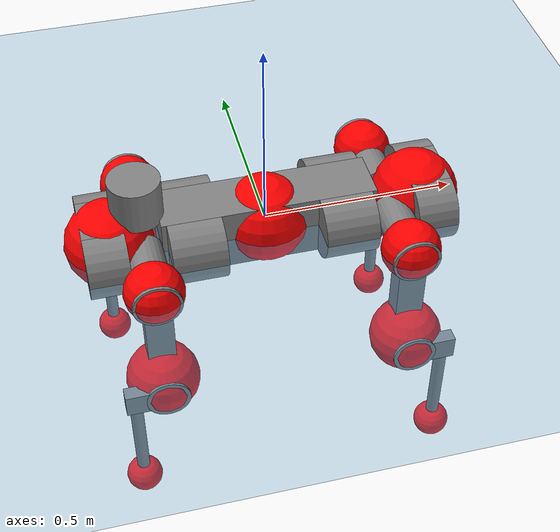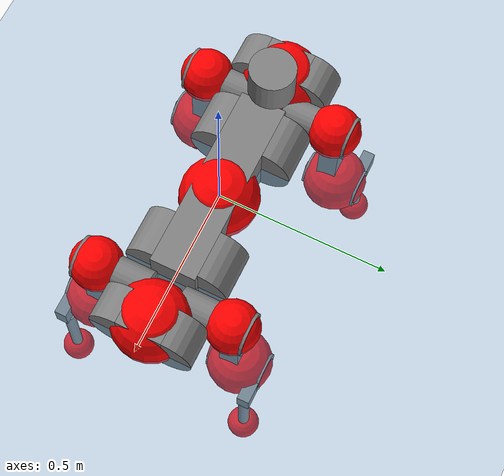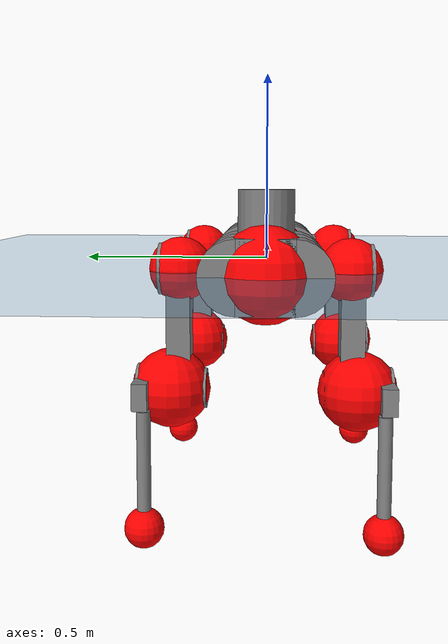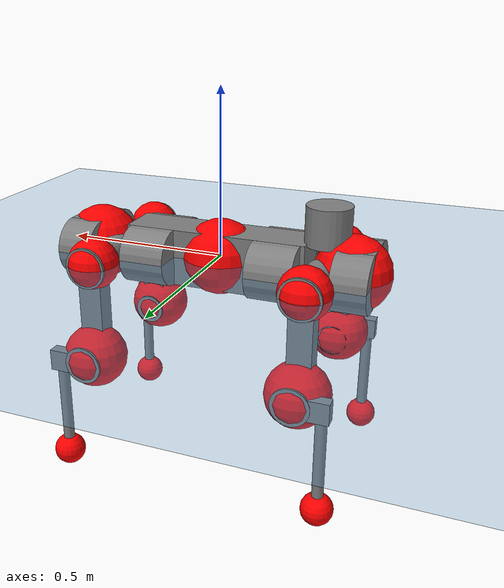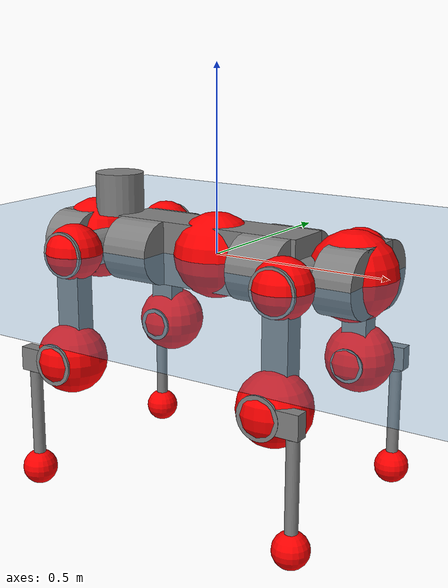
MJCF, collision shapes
<mujoco model="anymal_c">
  <compiler angle="radian" assetdir="assets" balanceinertia="true" inertiafromgeom="false"/>

  <option timestep="0.005" density="1.2" viscosity="2e-05"/>

  <size nkey="1"/>

  <visual>
    <quality shadowsize="8192"/>
    <map shadowclip="0.5"/>
  </visual>

  <default>
    <default class="/">
      <material specular="0" shininess="0.25"/>
      <geom contype="0" conaffinity="0" group="1" solref="-1000 -80"/>
      <site size="0.01 0.005 0.005" group="5"/>
      <general forcelimited="true" forcerange="-80 80" biastype="affine" gainprm="80" biasprm="0 -80 -2"/>
      <default class="anymal_c">
        <joint armature="0.01" damping="0.01" frictionloss="0.1"/>
        <default class="visual">
          <geom type="mesh" group="2"/>
          <default class="visual_zflip"/>
        </default>
        <default class="collision">
          <geom type="cylinder" group="3"/>
          <default class="foot">
            <geom size="0.03 0 0" type="sphere" condim="6" priority="1" friction="0.8 0.02 0.01" solimp="0.015 1 0.03"/>
          </default>
        </default>
      </default>
      <default class="reward_collision_sphere">
        <geom group="5" rgba="1 0 0 1"/>
      </default>
    </default>
  </default>

  <asset>
    <texture type="skybox" colorspace="auto" name="//unnamed_texture_0" builtin="gradient" rgb1="0.95 0.95 0.95" rgb2="0.95 0.95 0.95" width="100" height="600"/>
    <texture type="2d" colorspace="auto" name="texplane" builtin="checker" rgb1="0.345 0.575 0.748" rgb2="0.345 0.575 0.748" markrgb="1 1 1" width="512" height="512"/>
    <texture type="2d" colorspace="linear" name="base" file="base.png"/>
    <texture type="2d" colorspace="linear" name="top_shell" file="top_shell.png"/>
    <texture type="2d" colorspace="linear" name="bottom_shell" file="bottom_shell.png"/>
    <texture type="2d" colorspace="linear" name="remote" file="remote.png"/>
    <texture type="2d" colorspace="linear" name="hatch" file="hatch.png"/>
    <texture type="2d" colorspace="linear" name="handle" file="handle.png"/>
    <texture type="2d" colorspace="linear" name="face" file="face.png"/>
    <texture type="2d" colorspace="linear" name="battery" file="battery.png"/>
    <texture type="2d" colorspace="linear" name="lidar_cage" file="lidar_cage.png"/>
    <texture type="2d" colorspace="linear" name="depth_camera" file="depth_camera.png"/>
    <texture type="2d" colorspace="linear" name="wide_angle_camera" file="wide_angle_camera.png"/>
    <texture type="2d" colorspace="linear" name="lidar" file="lidar.png"/>
    <texture type="2d" colorspace="linear" name="drive" file="drive.png"/>
    <texture type="2d" colorspace="linear" name="hip_l" file="hip_l.png"/>
    <texture type="2d" colorspace="linear" name="shank_l" file="shank_l.png"/>
    <texture type="2d" colorspace="linear" name="foot" file="foot.png"/>
    <texture type="2d" colorspace="linear" name="thigh" file="thigh.png"/>
    <texture type="2d" colorspace="linear" name="shank_r" file="shank_r.png"/>
    <texture type="2d" colorspace="linear" name="hip_r" file="hip_r.png"/>
    <material name="MatPlane" class="/" texture="texplane" texuniform="true" texrepeat="2 2" specular="0.9" shininess="0.5"/>
    <material name="black_plastic" class="/" rgba="0.007 0.007 0.007 1"/>
    <material name="green" class="/" rgba="0.052 0.178 0.033 1"/>
    <material name="red" class="/" rgba="0.178 0.006 0.005 1"/>
    <material name="yellow" class="/" rgba="0.178 0.119 0.006 1"/>
    <material name="lwl" class="/" rgba="0.8 0.8 0.8 1"/>
    <material name="base" class="/" texture="base"/>
    <material name="top_shell" class="/" texture="top_shell"/>
    <material name="bottom_shell" class="/" texture="bottom_shell"/>
    <material name="hip_l" class="/" texture="hip_l"/>
    <material name="thigh" class="/" texture="thigh"/>
    <material name="shank_l" class="/" texture="shank_l"/>
    <material name="foot" class="/" texture="foot"/>
    <material name="hip_r" class="/" texture="hip_r"/>
    <material name="shank" class="/" texture="shank_r"/>
    <material name="hatch" class="/" texture="hatch"/>
    <material name="remote" class="/" texture="remote"/>
    <material name="handle" class="/" texture="handle"/>
    <material name="face" class="/" texture="face"/>
    <material name="depth_camera" class="/" texture="depth_camera"/>
    <material name="wide_angle_camera" class="/" texture="wide_angle_camera"/>
    <material name="battery" class="/" texture="battery"/>
    <material name="lidar_cage" class="/" texture="lidar_cage"/>
    <material name="lidar" class="/" texture="lidar"/>
    <material name="drive" class="/" texture="drive"/>
    <mesh name="base_0" class="/" file="base_0.obj"/>
    <mesh name="base_1" class="/" file="base_1.obj"/>
    <mesh name="base_2" class="/" file="base_2.obj"/>
    <mesh name="base_3" class="/" file="base_3.obj"/>
    <mesh name="base_4" class="/" file="base_4.obj"/>
    <mesh name="base_5" class="/" file="base_5.obj"/>
    <mesh name="top_shell" class="/" file="top_shell.obj"/>
    <mesh name="bottom_shell" class="/" file="bottom_shell.obj"/>
    <mesh name="remote" class="/" file="remote.obj"/>
    <mesh name="handle" class="/" file="handle.obj"/>
    <mesh name="face" class="/" file="face.obj"/>
    <mesh name="wide_angle_camera" class="/" file="wide_angle_camera.obj"/>
    <mesh name="depth_camera" class="/" file="depth_camera.obj"/>
    <mesh name="battery" class="/" file="battery.obj"/>
    <mesh name="lidar_cage" class="/" file="lidar_cage.obj"/>
    <mesh name="lidar" class="/" file="lidar.obj"/>
    <mesh name="drive" class="/" file="drive.obj"/>
    <mesh name="hip_l" class="/" file="hip_l.obj"/>
    <mesh name="thigh" class="/" file="thigh.obj"/>
    <mesh name="shank_l" class="/" file="shank_l.obj"/>
    <mesh name="foot" class="/" file="foot.obj"/>
    <mesh name="hip_r" class="/" file="hip_r.obj"/>
    <mesh name="hatch" class="/" file="hatch.obj"/>
    <mesh name="shank_r" class="/" file="shank_r.obj"/>
  </asset>

  <worldbody>
    <geom name="floor" class="/" size="100 100 0.125" type="plane" group="0" material="MatPlane"/>
    <light name="toplight_shadow" class="/" pos="0 0 5" dir="0.0990148 0.0990148 -0.990148" type="directional" ambient="0.04 0.04 0.04" diffuse="0.55 0.55 0.55" specular="0.12 0.12 0.12"/>
    <light name="toplight_fill" class="/" pos="0 0 5" dir="0.0990148 0.0990148 -0.990148" type="directional" castshadow="false" ambient="0.04 0.04 0.04" diffuse="0.3 0.3 0.3" specular="0.08 0.08 0.08"/>
    <body name="trunk" childclass="anymal_c" pos="5.48699e-05 8.28107e-05 -0.00259432" quat="1 0.000100072 4.72901e-05 0.000148614">
      <inertial pos="0.00188745 0.00255811 0.0527003" quat="0.499501 0.500483 0.499797 0.500219" mass="16.2198" diaginertia="0.375838 0.48026 0.235051"/>
      <joint name="//unnamed_joint_0" type="free" armature="0" damping="0" frictionloss="0"/>
      <geom name="//unnamed_geom_1" class="visual" material="green" mesh="base_0"/>
      <geom name="//unnamed_geom_2" class="visual" material="yellow" mesh="base_1"/>
      <geom name="//unnamed_geom_3" class="visual" material="red" mesh="base_2"/>
      <geom name="//unnamed_geom_4" class="visual" material="black_plastic" mesh="base_3"/>
      <geom name="//unnamed_geom_5" class="visual" material="lwl" mesh="base_4"/>
      <geom name="//unnamed_geom_6" class="visual" material="base" mesh="base_5"/>
      <geom name="trunk_1" class="collision" size="0.277705 0.0670322 0.0861843" type="box"/>
      <geom name="trunk_2" class="collision" size="0.0861843 0.0694262" pos="0.195113 0.0668347 0" quat="0.707107 0 0.707107 0"/>
      <geom name="trunk_3" class="collision" size="0.0861843 0.0694262" pos="-0.195113 0.0668347 0" quat="0.707107 0 0.707107 0"/>
      <geom name="trunk_4" class="collision" size="0.0861843 0.0694262" pos="0.195113 -0.0668347 0" quat="0.707107 0 0.707107 0"/>
      <geom name="trunk_5" class="collision" size="0.0861843 0.0694262" pos="-0.195113 -0.0668347 0" quat="0.707107 0 0.707107 0"/>
      <geom name="//unnamed_geom_12" class="visual" material="top_shell" mesh="top_shell"/>
      <geom name="//unnamed_geom_13" class="visual" material="bottom_shell" mesh="bottom_shell"/>
      <geom name="//unnamed_geom_14" class="visual" material="remote" mesh="remote"/>
      <geom name="//unnamed_geom_15" class="visual" material="handle" mesh="handle"/>
      <geom name="//unnamed_geom_16" class="visual" pos="0.371835 0 0" quat="1 0 0 0" material="face" mesh="face"/>
      <geom name="trunk_6" class="collision" size="0.0526682 0.0670322 0.0861843" pos="0.421174 0 0" type="box"/>
      <geom name="//unnamed_geom_18" class="collision" size="0.0861843 0.0526682" pos="0.421174 0.0668347 0" quat="0.707107 0 0.707107 0"/>
      <geom name="//unnamed_geom_19" class="collision" size="0.0861843 0.0526682" pos="0.421174 -0.0668347 0" quat="0.707107 0 0.707107 0"/>
      <geom name="//unnamed_geom_20" class="visual" pos="0.414137 0 -0.0307535" quat="0.965926 0 0.258819 0" material="depth_camera" mesh="depth_camera"/>
      <geom name="//unnamed_geom_21" class="visual" pos="0.460196 0 0.0152837" material="wide_angle_camera" mesh="wide_angle_camera"/>
      <geom name="//unnamed_geom_22" class="visual_zflip" pos="-0.371835 0 0" quat="0 0 0 1" material="face" mesh="face"/>
      <geom name="trunk_7" class="collision" size="0.0526682 0.0670322 0.0861843" pos="-0.421174 0 0" quat="0 0 0 1" type="box"/>
      <geom name="//unnamed_geom_24" class="collision" size="0.0861843 0.0526682" pos="-0.421174 -0.0668347 0" quat="0 -0.707107 0 0.707107"/>
      <geom name="//unnamed_geom_25" class="collision" size="0.0861843 0.0526682" pos="-0.421174 0.0668347 0" quat="0 -0.707107 0 0.707107"/>
      <geom name="//unnamed_geom_26" class="visual" pos="-0.414137 0 -0.0307535" quat="0 -0.258819 0 0.965926" material="depth_camera" mesh="depth_camera"/>
      <geom name="//unnamed_geom_27" class="visual_zflip" pos="-0.460196 0 0.0152837" quat="0 0 0 1" material="wide_angle_camera" mesh="wide_angle_camera"/>
      <geom name="//unnamed_geom_28" class="visual" material="battery" mesh="battery"/>
      <geom name="//unnamed_geom_29" class="visual" pos="0 0.0737651 0.0287173" quat="0.683013 -0.183013 0.183013 0.683013" material="depth_camera" mesh="depth_camera"/>
      <geom name="//unnamed_geom_30" class="visual" pos="0 -0.0737651 0.0287173" quat="0.683013 0.183013 0.183013 -0.683013" material="depth_camera" mesh="depth_camera"/>
      <geom name="//unnamed_geom_31" class="visual" pos="-0.326533 0 0.0750404" quat="1 0 0 0" material="lidar_cage" mesh="lidar_cage"/>
      <geom name="trunk_8" class="collision" size="0.0670322 0.0574562" pos="-0.326533 0 0.136298"/>
      <geom name="//unnamed_geom_33" class="visual" pos="-0.326533 2.26738e-05 0.14518" quat="0.707107 0 0 -0.707107" material="lidar" mesh="lidar"/>
      <geom name="//unnamed_geom_34" class="visual" pos="0.269031 0.0993208 -1.14153e-09" quat="0.258819 0.965926 0 0" material="drive" mesh="drive"/>
      <geom name="//unnamed_geom_35" class="visual" pos="0.269031 -0.0993208 1.14153e-09" quat="0.258819 -0.965926 0 0" material="drive" mesh="drive"/>
      <geom name="//unnamed_geom_36" class="visual" pos="-0.269031 0.0993208 1.14153e-09" quat="0 0 0.965926 -0.258819" material="drive" mesh="drive"/>
      <geom name="//unnamed_geom_37" class="visual" pos="-0.269031 -0.0993208 -1.14153e-09" quat="0 0 -0.965926 -0.258819" material="drive" mesh="drive"/>
      <geom name="//unnamed_geom_38" class="visual" pos="0.10406 0 0.0745299" quat="1 0 0 0" material="hatch" mesh="hatch"/>
      <geom name="//unnamed_geom_39" class="reward_collision_sphere" size="0.114912"/>
      <geom name="//unnamed_geom_40" class="reward_collision_sphere" size="0.114912" pos="0.403681 0 0"/>
      <geom name="//unnamed_geom_41" class="reward_collision_sphere" size="0.114912" pos="-0.403681 0 0"/>
      <site name="imu" pos="0.224216 -0.00113923 0.0495756" size="0.00957603"/>
      <camera name="track" pos="0 -1.90956 0" quat="0.707107 0.707107 0 0" mode="trackcom"/>
      <camera name="ego_camera" pos="0.403681 0 -0.0408383" quat="-0.5 -0.5 0.5 0.5"/>
      <body name="LF_HIP" pos="0.269 0.0980306 -0.00149398" quat="0.258875 0.965911 8.82254e-05 -0.000200475">
        <inertial pos="0.0480978 -0.0147823 -0.00993761" quat="-0.124729 0.710052 -0.131257 0.680471" mass="2.46711" diaginertia="0.00340791 0.00383291 0.0037526"/>
        <joint name="LF_HAA" pos="0 0 0" axis="0.999996 0.000857487 -0.00281137" range="-0.737839 0.484432" armature="0.0106685" damping="0.0190591" frictionloss="0.0823157"/>
        <geom name="//unnamed_geom_42" class="visual" pos="0 -6.71512e-05 1.10295e-05" quat="0.258819 -0.965926 0 0" material="hip_l" mesh="hip_l"/>
        <geom name="//unnamed_geom_43" class="visual" pos="0.0537344 -0.0658941 -0.0385334" quat="0.183013 -0.683013 0.683013 0.183013" material="drive" mesh="drive"/>
        <geom name="//unnamed_geom_44" class="collision" size="0.0478801 0.0670322" pos="0.0537344 -0.011419 -0.00704971" quat="-0.353553 -0.612372 0.612372 -0.353553"/>
        <body name="LF_THIGH" pos="0.0539781 -0.0692357 -0.0417817" quat="0.182744 -0.682959 0.683133 0.183033">
          <inertial pos="0.0274185 -8.96284e-05 -0.252536" quat="0.993109 -0.00484471 -0.0806213 0.084923" mass="2.5814" diaginertia="0.0175213 0.0236898 0.00434886"/>
          <joint name="LF_HFE" pos="0 0 0" axis="0.999989 -0.00451201 -0.0015431" range="-3.19253 3.15774" armature="0.00937282" damping="0.00992566" frictionloss="0.0921182"/>
          <geom name="//unnamed_geom_45" class="visual" pos="-0.00114826 -1.80939e-06 0" quat="0.707107 0 0 -0.707107" material="thigh" mesh="thigh"/>
          <geom name="//unnamed_geom_46" class="collision" size="0.0622442 0.0383041" pos="0.0358828 0 0" quat="0.5 0.5 -0.5 -0.5"/>
          <geom name="//unnamed_geom_47" class="collision" size="0.0359101 0.0287281 0.135323" pos="0.0269121 0 -0.144276" quat="0.707107 0 0 -0.707107" type="box"/>
          <geom name="//unnamed_geom_48" class="visual" pos="0.089976 0 -0.290973" quat="1 0 0 0" material="drive" mesh="drive"/>
          <geom name="//unnamed_geom_49" class="collision" size="0.0478801 0.0670322" pos="0.0271812 0 -0.290973" quat="0.707107 0 0.707107 0"/>
          <geom name="//unnamed_geom_50" class="reward_collision_sphere" size="0.0766082" pos="0.0224267 0 0"/>
          <body name="LF_SHANK" pos="0.0896948 0.00202073 -0.288758" quat="0.999999 0.000300798 -0.0012739 -0.000413851">
            <inertial pos="0.00519042 -0.0584909 -0.0820969" quat="0.992912 -0.116092 -0.000617269 -0.0254668" mass="0.496975" diaginertia="0.00590064 0.00719518 0.00119466"/>
            <joint name="LF_KFE" pos="0 0 0" axis="0.999985 -0.000559727 0.00541014" range="-3.15992 3.16026" armature="0.00920276" damping="0.0237489" frictionloss="0.0832802"/>
            <geom name="//unnamed_geom_51" class="visual" pos="-0.000374422 -0.00199644 0" quat="0.707107 0 0 -0.707107" material="shank_l" mesh="shank_l"/>
            <geom name="LF_kfe_act" class="collision" size="0.0574562 0.0191521" pos="0.0179414 0 0" quat="0.5 0.5 -0.5 -0.5"/>
            <geom name="//unnamed_geom_53" class="collision" size="0.0550612 0.0323191 0.0181945" pos="0.0179414 -0.054899 0" quat="0.5 0.5 -0.5 -0.5" type="box"/>
            <geom name="//unnamed_geom_54" class="visual" pos="0.0117068 -0.0846165 -0.345053" quat="0.382683 0 0 -0.92388" material="foot" mesh="foot"/>
            <geom name="LF_calf" class="collision" size="0.0167581 0.135263" pos="0.0117068 -0.0839731 -0.172526" quat="0.707107 0 0 -0.707107"/>
            <geom name="LF_foot" class="foot" size="0.0313353" pos="0.0117068 -0.0839731 -0.322081" quat="0.707107 0 0 -0.707107"/>
            <geom name="//unnamed_geom_57" class="reward_collision_sphere" size="0.0957603" pos="-0.0448535 0 0"/>
            <geom name="//unnamed_geom_58" class="reward_collision_sphere" size="0.0478801" pos="0.0117068 -0.0839731 -0.322081"/>
            <site name="LF_foot" class="foot" pos="0.0117068 -0.0839731 -0.322081" quat="0.707107 0 0 -0.707107" size="0.00957603"/>
          </body>
        </body>
      </body>
      <body name="RF_HIP" pos="0.269996 -0.102053 0.000274769" quat="0.257528 -0.966271 -0.000476142 4.08242e-05">
        <inertial pos="0.050874 0.0139 -0.00745269" quat="0.134509 0.679417 0.127687 0.709926" mass="2.35191" diaginertia="0.00330141 0.00370101 0.00364484"/>
        <joint name="RF_HAA" pos="0 0 0" axis="1 -0.000164503 -0.00063172" range="-0.438611 0.667929" armature="0.00934946" damping="0.00762229" frictionloss="0.0846924"/>
        <geom name="//unnamed_geom_59" class="visual" pos="0 6.71507e-05 1.10295e-05" quat="0.258819 0.965926 0 0" material="hip_r" mesh="hip_r"/>
        <geom name="//unnamed_geom_60" class="visual" pos="0.0537344 0.0658941 -0.0385334" quat="0.183013 0.683013 0.683013 -0.183013" material="drive" mesh="drive"/>
        <geom name="//unnamed_geom_61" class="collision" size="0.0478801 0.0670322" pos="0.0537344 0.011419 -0.00704971" quat="-0.353553 0.612372 0.612372 0.353553"/>
        <body name="RF_THIGH" pos="0.0562375 0.0713742 -0.0430433" quat="0.183058 0.682862 0.683129 -0.183096">
          <inertial pos="0.028176 0.00100212 -0.250517" quat="0.99278 -0.00513857 -0.0806309 0.0886564" mass="2.72036" diaginertia="0.0174612 0.0240829 0.00471139"/>
          <joint name="RF_HFE" pos="0 0 0" axis="0.999939 -0.00917199 -0.00609572" stiffness="0.00623353" range="-3.09887 3.08548" armature="0.00982585" damping="0" frictionloss="0.0995456"/>
          <geom name="//unnamed_geom_62" class="visual" pos="-0.00114826 -1.80939e-06 0" quat="0.707107 0 0 -0.707107" material="thigh" mesh="thigh"/>
          <geom name="//unnamed_geom_63" class="collision" size="0.0622442 0.0383041" pos="0.0358828 0 0" quat="0.5 0.5 0.5 0.5"/>
          <geom name="//unnamed_geom_64" class="collision" size="0.0359101 0.0287281 0.135323" pos="0.0269121 0 -0.144276" quat="0.707107 0 0 0.707107" type="box"/>
          <geom name="//unnamed_geom_65" class="visual" pos="0.089976 0 -0.290973" quat="1 0 0 0" material="drive" mesh="drive"/>
          <geom name="//unnamed_geom_66" class="collision" size="0.0478801 0.0670322" pos="0.0271812 0 -0.290973" quat="0.707107 0 0.707107 0"/>
          <geom name="//unnamed_geom_67" class="reward_collision_sphere" size="0.0766082" pos="0.0224267 0 0"/>
          <body name="RF_SHANK" pos="0.0928363 -0.000745606 -0.289435" quat="1 0.000338099 -0.000307482 0.000292254">
            <inertial pos="0.00470969 0.0593195 -0.0798616" quat="0.992941 0.115765 -0.00256658 0.0256901" mass="0.503198" diaginertia="0.00605137 0.00728146 0.00123298"/>
            <joint name="RF_KFE" pos="0 0 0" axis="0.999955 -0.00391861 0.0086946" range="-3.13857 3.0808" armature="0.00935836" damping="0.00375684" frictionloss="0.0854386"/>
            <geom name="//unnamed_geom_68" class="visual" pos="-0.00037442 0.00199643 0" quat="0.707107 0 0 0.707107" material="shank" mesh="shank_r"/>
            <geom name="RF_kfe_act" class="collision" size="0.0574562 0.0191521" pos="0.0179414 0 0" quat="0.5 0.5 0.5 0.5"/>
            <geom name="//unnamed_geom_70" class="collision" size="0.0550612 0.0323191 0.0181945" pos="0.0179414 0.054899 0" quat="0.5 0.5 0.5 0.5" type="box"/>
            <geom name="//unnamed_geom_71" class="visual" pos="0.0117067 0.0846165 -0.345053" quat="0.382683 0 0 0.92388" material="foot" mesh="foot"/>
            <geom name="RF_calf" class="collision" size="0.0167581 0.135263" pos="0.0117068 0.0839731 -0.172526" quat="0.707107 0 0 0.707107"/>
            <geom name="RF_foot" class="foot" size="0.0278751" pos="0.0117068 0.0839731 -0.322081" quat="0.707107 0 0 0.707107"/>
            <geom name="//unnamed_geom_74" class="reward_collision_sphere" size="0.0957603" pos="-0.0448535 0 0"/>
            <geom name="//unnamed_geom_75" class="reward_collision_sphere" size="0.0478801" pos="0.0117068 0.0839731 -0.322081"/>
            <site name="RF_foot" class="foot" pos="0.0117068 0.0839731 -0.322081" quat="0.707107 0 0 0.707107" size="0.00957603"/>
          </body>
        </body>
      </body>
      <body name="LH_HIP" pos="-0.267454 0.101843 0.000383646" quat="0.000306702 0.000245247 0.965905 -0.258895">
        <inertial pos="0.0495402 0.0116005 -0.00958527" quat="0.144361 0.677996 0.125183 0.709796" mass="2.38163" diaginertia="0.00341298 0.00402384 0.00360455"/>
        <joint name="LH_HAA" pos="0 0 0" axis="0.999932 -0.000340242 -0.0116797" range="-0.510884 0.6969" armature="0.0094542" damping="0" frictionloss="0.103525"/>
        <geom name="//unnamed_geom_76" class="visual" pos="0 6.71507e-05 1.10295e-05" quat="-0.258819 -0.965926 0 0" material="hip_r" mesh="hip_r"/>
        <geom name="//unnamed_geom_77" class="visual" pos="0.0537344 0.0658941 -0.0385334" quat="0.183013 0.683013 0.683013 -0.183013" material="drive" mesh="drive"/>
        <geom name="//unnamed_geom_78" class="collision" size="0.0478801 0.0670322" pos="0.0537344 0.011419 -0.00704971" quat="-0.353553 0.612372 0.612372 0.353553"/>
        <body name="LH_THIGH" pos="0.0533197 0.0661027 -0.0433192" quat="0.182767 0.683135 0.682673 -0.184066">
          <inertial pos="0.0276086 -0.00267654 -0.250501" quat="0.992473 -0.00671407 -0.0817458 0.0909405" mass="2.68776" diaginertia="0.0183908 0.02393 0.00487964"/>
          <joint name="LH_HFE" pos="0 0 0" axis="0.999999 0.00123459 0.000178169" stiffness="0.00115467" range="-3.14144 3.13893" armature="0.00950361" damping="0.0125346" frictionloss="0.0961619"/>
          <geom name="//unnamed_geom_79" class="visual" pos="-0.00114826 -1.80939e-06 0" quat="0.707107 0 0 -0.707107" material="thigh" mesh="thigh"/>
          <geom name="//unnamed_geom_80" class="collision" size="0.0622442 0.0383041" pos="0.0358828 0 0" quat="0.5 0.5 -0.5 -0.5"/>
          <geom name="//unnamed_geom_81" class="collision" size="0.0359101 0.0287281 0.135323" pos="0.0269121 0 -0.144276" quat="0.707107 0 0 -0.707107" type="box"/>
          <geom name="//unnamed_geom_82" class="visual" pos="0.089976 0 -0.290973" quat="1 0 0 0" material="drive" mesh="drive"/>
          <geom name="//unnamed_geom_83" class="collision" size="0.0478801 0.0670322" pos="0.0271812 0 -0.290973" quat="0.707107 0 0.707107 0"/>
          <geom name="//unnamed_geom_84" class="reward_collision_sphere" size="0.0766082" pos="0.0224267 0 0"/>
          <body name="LH_SHANK" pos="0.0923582 -0.000395428 -0.290738" quat="0.999999 0.00116801 0.000412292 0.000315886">
            <inertial pos="0.00766113 0.0581791 -0.0848181" quat="0.992936 0.115859 -0.0011001 0.0255497" mass="0.510782" diaginertia="0.00605383 0.00775991 0.00130228"/>
            <joint name="LH_KFE" pos="0 0 0" axis="0.999995 0.000292486 -0.00307708" range="-3.13846 3.10231" armature="0.0095583" damping="0.0219295" frictionloss="0.102429"/>
            <geom name="//unnamed_geom_85" class="visual" pos="-0.00037442 0.00199643 0" quat="-0.707107 0 0 -0.707107" material="shank" mesh="shank_r"/>
            <geom name="LH_kfe_act" class="collision" size="0.0574562 0.0191521" pos="0.0179414 0 0" quat="0.5 0.5 -0.5 -0.5"/>
            <geom name="//unnamed_geom_87" class="collision" size="0.0550612 0.0323191 0.0181945" pos="0.0179414 0.054899 0" quat="0.5 0.5 -0.5 -0.5" type="box"/>
            <geom name="//unnamed_geom_88" class="visual" pos="0.0117067 0.0846165 -0.345053" quat="-0.382683 0 0 -0.92388" material="foot" mesh="foot"/>
            <geom name="LH_calf" class="collision" size="0.0167581 0.135263" pos="0.0117068 0.0839731 -0.172526" quat="0.707107 0 0 -0.707107"/>
            <geom name="LH_foot" class="foot" size="0.0270081" pos="0.0117068 0.0839731 -0.322081" quat="0.707107 0 0 -0.707107"/>
            <geom name="//unnamed_geom_91" class="reward_collision_sphere" size="0.0957603" pos="-0.0448535 0 0"/>
            <geom name="//unnamed_geom_92" class="reward_collision_sphere" size="0.0478801" pos="0.0117068 0.0839731 -0.322081"/>
            <site name="LH_foot" class="foot" pos="0.0117068 0.0839731 -0.322081" quat="0.707107 0 0 -0.707107" size="0.00957603"/>
          </body>
        </body>
      </body>
      <body name="RH_HIP" pos="-0.269398 -0.0963735 -0.0015166" quat="-0.00109449 0.000743534 -0.96616 -0.257939">
        <inertial pos="0.0499638 -0.0133105 -0.00985203" quat="-0.124593 0.715025 -0.126954 0.676091" mass="2.38307" diaginertia="0.00339307 0.00371715 0.00354079"/>
        <joint name="RH_HAA" pos="0 0 0" axis="0.999995 -0.00319019 -0.000768353" range="-0.779137 0.480965" armature="0.00812409" damping="0.0141274" frictionloss="0.106544"/>
        <geom name="//unnamed_geom_93" class="visual" pos="0 -6.71512e-05 1.10295e-05" quat="-0.258819 0.965926 0 0" material="hip_l" mesh="hip_l"/>
        <geom name="//unnamed_geom_94" class="visual" pos="0.0537344 -0.0658941 -0.0385334" quat="-0.183013 0.683013 -0.683013 -0.183013" material="drive" mesh="drive"/>
        <geom name="//unnamed_geom_95" class="collision" size="0.0478801 0.0670322" pos="0.0537344 -0.011419 -0.00704971" quat="0.353553 0.612372 -0.612372 0.353553"/>
        <body name="RH_THIGH" pos="0.0546114 -0.0684398 -0.0448051" quat="-0.183087 0.682904 -0.683065 -0.183149">
          <inertial pos="0.0278633 0.00206789 -0.248661" quat="0.99184 -0.00277962 -0.094116 0.0859478" mass="2.6356" diaginertia="0.0171359 0.0229495 0.00456064"/>
          <joint name="RH_HFE" pos="0 0 0" axis="0.999935 0.0113314 0.00117822" stiffness="0.0099182" range="-3.12335 3.089" armature="0.0107147" damping="0.00849448" frictionloss="0.0952763"/>
          <geom name="//unnamed_geom_96" class="visual" pos="-0.00114826 -1.80939e-06 0" quat="0.707107 0 0 -0.707107" material="thigh" mesh="thigh"/>
          <geom name="//unnamed_geom_97" class="collision" size="0.0622442 0.0383041" pos="0.0358828 0 0" quat="0.5 0.5 0.5 0.5"/>
          <geom name="//unnamed_geom_98" class="collision" size="0.0359101 0.0287281 0.135323" pos="0.0269121 0 -0.144276" quat="0.707107 0 0 0.707107" type="box"/>
          <geom name="//unnamed_geom_99" class="visual" pos="0.089976 0 -0.290973" quat="1 0 0 0" material="drive" mesh="drive"/>
          <geom name="//unnamed_geom_100" class="collision" size="0.0478801 0.0670322" pos="0.0271812 0 -0.290973" quat="0.707107 0 0.707107 0"/>
          <geom name="//unnamed_geom_101" class="reward_collision_sphere" size="0.0766082" pos="0.0224267 0 0"/>
          <body name="RH_SHANK" pos="0.0874451 -0.00236225 -0.290976" quat="0.999999 -0.00113952 -0.000417786 0.00074062">
            <inertial pos="0.00652698 -0.0588017 -0.0821136" quat="0.993054 -0.111685 0.000252208 -0.0370264" mass="0.489642" diaginertia="0.0057184 0.00720663 0.00124932"/>
            <joint name="RH_KFE" pos="0 0 0" axis="0.99996 -0.00241802 0.00861939" stiffness="0.00969097" range="-3.07278 3.19114" armature="0.00955677" damping="0.00738369" frictionloss="0.0906591"/>
            <geom name="//unnamed_geom_102" class="visual" pos="-0.000374422 -0.00199644 0" quat="0.707107 0 0 -0.707107" material="shank_l" mesh="shank_l"/>
            <geom name="RH_kfe_act" class="collision" size="0.0574562 0.0191521" pos="0.0179414 0 0" quat="0.5 0.5 0.5 0.5"/>
            <geom name="//unnamed_geom_104" class="collision" size="0.0550612 0.0323191 0.0181945" pos="0.0179414 -0.054899 0" quat="0.5 0.5 0.5 0.5" type="box"/>
            <geom name="//unnamed_geom_105" class="visual" pos="0.0117068 -0.0846165 -0.345053" quat="0.382683 0 0 -0.92388" material="foot" mesh="foot"/>
            <geom name="RH_calf" class="collision" size="0.0167581 0.135263" pos="0.0117068 -0.0839731 -0.172526" quat="0.707107 0 0 0.707107"/>
            <geom name="RH_foot" class="foot" size="0.0260039" pos="0.0117068 -0.0839731 -0.322081" quat="0.707107 0 0 0.707107"/>
            <geom name="//unnamed_geom_108" class="reward_collision_sphere" size="0.0957603" pos="-0.0448535 0 0"/>
            <geom name="//unnamed_geom_109" class="reward_collision_sphere" size="0.0478801" pos="0.0117068 -0.0839731 -0.322081"/>
            <site name="RH_foot" class="foot" pos="0.0117068 -0.0839731 -0.322081" quat="0.707107 0 0 0.707107" size="0.00957603"/>
          </body>
        </body>
      </body>
    </body>
  </worldbody>

  <contact>
    <pair class="/" geom1="floor" geom2="LF_foot" name="//unnamed_contact_0"/>
    <pair class="/" geom1="floor" geom2="RF_foot" name="//unnamed_contact_1"/>
    <pair class="/" geom1="floor" geom2="LH_foot" name="//unnamed_contact_2"/>
    <pair class="/" geom1="floor" geom2="RH_foot" name="//unnamed_contact_3"/>
  </contact>

  <actuator>
    <general name="LF_HAA" class="/" joint="LF_HAA" forcerange="-72.4382 72.4382" gainprm="82.5096" biasprm="0 -82.5096 -2.0036"/>
    <general name="LF_HFE" class="/" joint="LF_HFE" forcerange="-70.3518 70.3518" gainprm="82.5096" biasprm="0 -82.5096 -2.0036"/>
    <general name="LF_KFE" class="/" joint="LF_KFE" forcerange="-75.1814 75.1814" gainprm="82.5096" biasprm="0 -82.5096 -2.0036"/>
    <general name="RF_HAA" class="/" joint="RF_HAA" forcerange="-78.5903 78.5903" gainprm="82.5096" biasprm="0 -82.5096 -2.0036"/>
    <general name="RF_HFE" class="/" joint="RF_HFE" forcerange="-80.3038 80.3038" gainprm="82.5096" biasprm="0 -82.5096 -2.0036"/>
    <general name="RF_KFE" class="/" joint="RF_KFE" forcerange="-73.5537 73.5537" gainprm="82.5096" biasprm="0 -82.5096 -2.0036"/>
    <general name="LH_HAA" class="/" joint="LH_HAA" forcerange="-84.1121 84.1121" gainprm="82.5096" biasprm="0 -82.5096 -2.0036"/>
    <general name="LH_HFE" class="/" joint="LH_HFE" forcerange="-76.889 76.889" gainprm="82.5096" biasprm="0 -82.5096 -2.0036"/>
    <general name="LH_KFE" class="/" joint="LH_KFE" forcerange="-73.3637 73.3637" gainprm="82.5096" biasprm="0 -82.5096 -2.0036"/>
    <general name="RH_HAA" class="/" joint="RH_HAA" forcerange="-70.2838 70.2838" gainprm="82.5096" biasprm="0 -82.5096 -2.0036"/>
    <general name="RH_HFE" class="/" joint="RH_HFE" forcerange="-79.9344 79.9344" gainprm="82.5096" biasprm="0 -82.5096 -2.0036"/>
    <general name="RH_KFE" class="/" joint="RH_KFE" forcerange="-79.3199 79.3199" gainprm="82.5096" biasprm="0 -82.5096 -2.0036"/>
  </actuator>

  <sensor>
    <gyro site="imu" name="imu_angular_velocity"/>
    <velocimeter site="imu" name="imu_linear_velocity"/>
    <framelinvel objtype="site" objname="LF_foot" name="LF_foot_global_linear_velocity"/>
    <framelinvel objtype="site" objname="RF_foot" name="RF_foot_global_linear_velocity"/>
    <framelinvel objtype="site" objname="LH_foot" name="LH_foot_global_linear_velocity"/>
    <framelinvel objtype="site" objname="RH_foot" name="RH_foot_global_linear_velocity"/>
  </sensor>

  <keyframe>
    <key name="home" qpos="0 0 0.55 1 0 0 0 0 0.4 -0.8 0 -0.4 0.8 0 -0.4 0.8 0 0.4 -0.8"/>
  </keyframe>
</mujoco>
